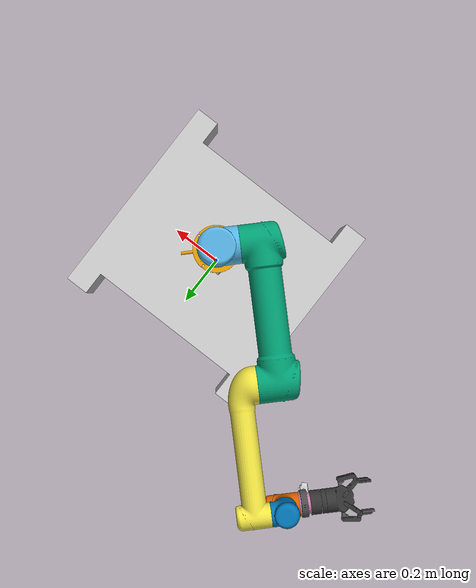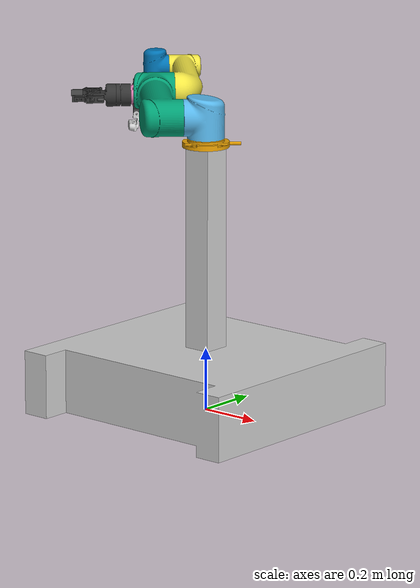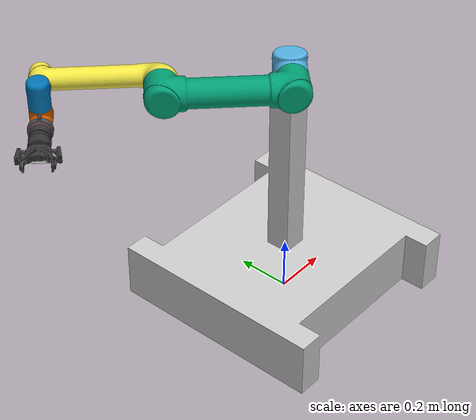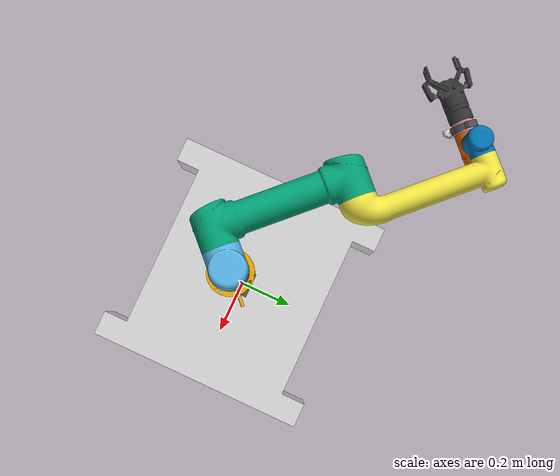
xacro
<?xml version="1.0" encoding="utf-8"?>
<robot name="oja" xmlns:xacro="http://wiki.ros.org/xacro">

    <!-- Arm -->

    <link name="arm_base_link">
        <visual>
            <geometry>
                <mesh filename="ur5/visual/base.obj"/>
            </geometry>
        </visual>
        <collision>
            <geometry>
                <mesh filename="ur5/collision/base.stl"/>
            </geometry>
        </collision>
        <inertial>
            <mass value="4.0"/>
            <origin rpy="0 0 0" xyz="0.0 0.0 0.0"/>
            <inertia ixx="0.00443333156" ixy="0.0" ixz="0.0" iyy="0.00443333156" iyz="0.0" izz="0.0072"/>
        </inertial>
    </link>
    <joint name="arm_shoulder_pan_joint" type="revolute">
        <parent link="arm_base_link"/>
        <child link="arm_shoulder_link"/>
        <origin rpy="0.0 0.0 0.0" xyz="0.0 0.0 0.089159"/>
        <axis xyz="0 0 1"/>
        <limit effort="150.0" lower="-6.28318530718" upper="6.28318530718" velocity="3.15"/>
        <dynamics damping="0.0" friction="0.0"/>
    </joint>
    <link name="arm_shoulder_link">
        <visual>
            <geometry>
                <mesh filename="ur5/visual/shoulder.obj"/>
            </geometry>
        </visual>
        <collision>
            <geometry>
                <mesh filename="ur5/collision/shoulder.stl"/>
            </geometry>
        </collision>
        <inertial>
            <mass value="3.7"/>
            <origin rpy="0 0 0" xyz="0.0 0.0 0.0"/>
            <inertia ixx="0.010267495893" ixy="0.0" ixz="0.0" iyy="0.010267495893" iyz="0.0" izz="0.00666"/>
        </inertial>
    </link>
    <joint name="arm_shoulder_lift_joint" type="revolute">
        <parent link="arm_shoulder_link"/>
        <child link="arm_upper_arm_link"/>
        <origin rpy="0.0 1.57079632679 0.0" xyz="0.0 0.13585 0.0"/>
        <axis xyz="0 1 0"/>
        <limit effort="150.0" lower="-6.28318530718" upper="6.28318530718" velocity="3.15"/>
        <dynamics damping="0.0" friction="0.0"/>
    </joint>
    <link name="arm_upper_arm_link">
        <visual>
            <geometry>
                <mesh filename="ur5/visual/upperarm.obj"/>
            </geometry>
        </visual>
        <collision>
            <geometry>
                <mesh filename="ur5/collision/upperarm.stl"/>
            </geometry>
        </collision>
        <inertial>
            <mass value="8.393"/>
            <origin rpy="0 0 0" xyz="0.0 0.0 0.28"/>
            <inertia ixx="0.22689067591" ixy="0.0" ixz="0.0" iyy="0.22689067591" iyz="0.0" izz="0.0151074"/>
        </inertial>
    </link>
    <joint name="arm_elbow_joint" type="revolute">
        <parent link="arm_upper_arm_link"/>
        <child link="arm_forearm_link"/>
        <origin rpy="0.0 0.0 0.0" xyz="0.0 -0.1197 0.425"/>
        <axis xyz="0 1 0"/>
        <limit effort="150.0" lower="-3.14159265359" upper="3.14159265359" velocity="3.15"/>
        <dynamics damping="0.0" friction="0.0"/>
    </joint>
    <link name="arm_forearm_link">
        <visual>
            <geometry>
                <mesh filename="ur5/visual/forearm.obj"/>
            </geometry>
        </visual>
        <collision>
            <geometry>
                <mesh filename="ur5/collision/forearm.stl"/>
            </geometry>
        </collision>
        <inertial>
            <mass value="2.275"/>
            <origin rpy="0 0 0" xyz="0.0 0.0 0.196125"/>
            <inertia ixx="0.0312167910289" ixy="0.0" ixz="0.0" iyy="0.0312167910289" iyz="0.0" izz="0.004095"/>
        </inertial>
    </link>
    <joint name="arm_wrist_1_joint" type="revolute">
        <parent link="arm_forearm_link"/>
        <child link="arm_wrist_1_link"/>
        <origin rpy="0.0 1.57079632679 0.0" xyz="0.0 0.0 0.39225"/>
        <axis xyz="0 1 0"/>
        <limit effort="28.0" lower="-6.28318530718" upper="6.28318530718" velocity="3.2"/>
        <dynamics damping="0.0" friction="0.0"/>
    </joint>
    <link name="arm_wrist_1_link">
        <visual>
            <geometry>
                <mesh filename="ur5/visual/wrist1.obj"/>
            </geometry>
        </visual>
        <collision>
            <geometry>
                <mesh filename="ur5/collision/wrist1.stl"/>
            </geometry>
        </collision>
        <inertial>
            <mass value="1.219"/>
            <origin rpy="0 0 0" xyz="0.0 0.093 0.0"/>
            <inertia ixx="0.00255989897604" ixy="0.0" ixz="0.0" iyy="0.00255989897604" iyz="0.0" izz="0.0021942"/>
        </inertial>
    </link>
    <joint name="arm_wrist_2_joint" type="revolute">
        <parent link="arm_wrist_1_link"/>
        <child link="arm_wrist_2_link"/>
        <origin rpy="0.0 0.0 0.0" xyz="0.0 0.093 0.0"/>
        <axis xyz="0 0 1"/>
        <limit effort="28.0" lower="-6.28318530718" upper="6.28318530718" velocity="3.2"/>
        <dynamics damping="0.0" friction="0.0"/>
    </joint>
    <link name="arm_wrist_2_link">
        <visual>
            <geometry>
                <mesh filename="ur5/visual/wrist2.obj"/>
            </geometry>
        </visual>
        <collision>
            <geometry>
                <mesh filename="ur5/collision/wrist2.stl"/>
            </geometry>
        </collision>
        <inertial>
            <mass value="1.219"/>
            <origin rpy="0 0 0" xyz="0.0 0.0 0.09465"/>
            <inertia ixx="0.00255989897604" ixy="0.0" ixz="0.0" iyy="0.00255989897604" iyz="0.0" izz="0.0021942"/>
        </inertial>
    </link>
    <joint name="arm_wrist_3_joint" type="revolute">
        <parent link="arm_wrist_2_link"/>
        <child link="arm_wrist_3_link"/>
        <origin rpy="0.0 0.0 0.0" xyz="0.0 0.0 0.09465"/>
        <axis xyz="0 1 0"/>
        <limit effort="28.0" lower="-6.28318530718" upper="6.28318530718" velocity="3.2"/>
        <dynamics damping="0.0" friction="0.0"/>
    </joint>
    <link name="arm_wrist_3_link">
        <visual>
            <geometry>
                <mesh filename="ur5/visual/wrist3.obj"/>
            </geometry>
        </visual>
        <collision>
            <geometry>
                <mesh filename="ur5/collision/wrist3.stl"/>
            </geometry>
        </collision>
        <inertial>
            <mass value="0.1879"/>
            <origin rpy="1.57079632679 0 0" xyz="0.0 0.06505 0.0"/>
            <inertia ixx="8.46958911216e-05" ixy="0.0" ixz="0.0" iyy="8.46958911216e-05" iyz="0.0"
                     izz="0.0001321171875"/>
        </inertial>
    </link>
    <joint name="arm_ft_fixed_joint" type="fixed">
        <parent link="arm_wrist_3_link"/>
        <child link="arm_ft_link"/>
        <origin rpy="1.57079632679 0.0 0" xyz="0.0 0.1194 0.0"/>
    </joint>
    <link name="arm_ft_link">
        <visual>
            <geometry>
                <mesh filename="ur5/visual/ft300.dae"/>
            </geometry>
            <material name="LightBlack"/>
        </visual>
        <collision>
            <geometry>
                <mesh filename="ur5/collision/ft300.stl"/>
            </geometry>
        </collision>
        <inertial>
            <origin xyz="0 0 ${-20 / 1000}" rpy="0 0 0"/>
            <mass value="0.350"/>
            <inertia ixx="${262 / 1000000}" ixy="0" ixz="${1 / 1000000}" iyy="${265 / 1000000}" iyx="0"
                     iyz="${1 / 1000000}" izz="${219 / 1000000}" izx="${-1 / 1000000}" izy="${1 / 1000000}"/>
        </inertial>
    </link>

    <!-- Gripper -->

    <joint name="gripper_coupling_joint" type="fixed">
        <parent link="arm_ft_link"/>
        <child link="gripper_coupling_link"/>
        <origin rpy="3.14159265359 0 1.57079632679" xyz="0 0 0"/>
    </joint>
    <link name="gripper_coupling_link">
        <visual>
            <geometry>
                <mesh filename="robotiq_2f/visual/coupling.dae"/>
            </geometry>
            <material name="LightBlack">
                <color rgba="0.2 0.2 0.2 1.0"/>
            </material>
        </visual>
        <inertial>
            <mass value="0.1"/>
            <inertia ixx="0.0" ixy="0.0" ixz="0.0" iyy="0.0" iyz="0.0" izz="0.0"/>
        </inertial>
        <collision>
            <geometry>
                <mesh filename="robotiq_2f/collision/coupling.stl"/>
            </geometry>
        </collision>
    </link>
    <joint name="gripper_base_joint" type="fixed">
        <parent link="gripper_coupling_link"/>
        <child link="gripper_base_link"/>
        <origin rpy="0 0 3.14159265359" xyz="0 0 0.008"/>
    </joint>
    <link name="gripper_base_link">
        <inertial>
            <origin rpy="0 0 0" xyz="8.625E-08 -4.6583E-06 0.03145"/>
            <mass value="0.22652"/>
            <inertia ixx="0.00020005" ixy="-4.2442E-10" ixz="-2.9069E-10" iyy="0.00017832" iyz="-3.4402E-08"
                     izz="0.00013478"/>
        </inertial>
        <visual>
            <geometry>
                <mesh filename="robotiq_2f/visual/base_link.dae"/>
            </geometry>
            <material name="LightBlack"/>
        </visual>
        <collision>
            <geometry>
                <mesh filename="robotiq_2f/collision/base_link.stl"/>
            </geometry>
        </collision>
    </link>
    <link name="gripper_left_outer_knuckle">
        <inertial>
            <origin rpy="0 0 0" xyz="-0.000200000000003065 0.0199435877845359 0.0292245259211331"/>
            <mass value="0.00853198276973456"/>
            <inertia ixx="2.89328108496468E-06" ixy="-1.57935047237397E-19" ixz="-1.93980378593255E-19"
                     iyy="1.86719750325683E-06" iyz="-1.21858577871576E-06" izz="1.21905238907251E-06"/>
        </inertial>
        <visual>
            <origin rpy="0 0 0" xyz="0 0 0"/>
            <geometry>
                <mesh filename="robotiq_2f/visual/outer_knuckle.dae"/>
            </geometry>
            <material name="DarkGrey"/>
        </visual>
        <collision>
            <origin rpy="0 0 0" xyz="0 0 0"/>
            <geometry>
                <mesh filename="robotiq_2f/collision/outer_knuckle.stl"/>
            </geometry>
        </collision>
    </link>
    <link name="gripper_left_outer_finger">
        <inertial>
            <origin rpy="0 0 0" xyz="0.00030115855001899 0.0373907951953854 -0.0208027427000385"/>
            <mass value="0.022614240507152"/>
            <inertia ixx="1.52518312458174E-05" ixy="9.76583423954399E-10" ixz="-5.43838577022588E-10"
                     iyy="6.17694243867776E-06" iyz="6.78636130740228E-06" izz="1.16494917907219E-05"/>
        </inertial>
        <visual>
            <origin rpy="0 0 0" xyz="0 0 0"/>
            <geometry>
                <mesh filename="robotiq_2f/visual/outer_finger.dae"/>
            </geometry>
            <material name="LightBlack"/>
        </visual>
        <collision>
            <geometry>
                <mesh filename="robotiq_2f/collision/outer_finger.stl"/>
            </geometry>
        </collision>
    </link>
    <link name="gripper_left_inner_finger">
        <inertial>
            <origin rpy="0 0 0" xyz="0.000299999999999317 0.0160078233491243 -0.0136945669206257"/>
            <mass value="0.0104003125914103"/>
            <inertia ixx="2.71909453810972E-06" ixy="1.35402465472579E-21" ixz="-7.1817349065269E-22"
                     iyy="7.69100314106116E-07" iyz="6.74715432769696E-07" izz="2.30315190420171E-06"/>
        </inertial>
        <visual>
            <origin rpy="0 0 0" xyz="0 0 0"/>
            <geometry>
                <mesh filename="robotiq_2f/visual/inner_finger.dae"/>
            </geometry>
            <material name="LightBlack"/>
        </visual>
        <collision>
            <geometry>
                <mesh filename="robotiq_2f/collision/inner_finger.stl"/>
            </geometry>
        </collision>
    </link>
    <link name="gripper_left_inner_finger_pad">
        <visual>
            <origin rpy="0 0 0" xyz="0 0 0"/>
            <geometry>
                <box size="0.022 0.00635 0.0375"/>
            </geometry>
            <material name="LightBlack"/>
        </visual>
        <collision>
            <origin rpy="0 0 0" xyz="0 0 0"/>
            <geometry>
                <box size="0.022 0.00635 0.0375"/>
            </geometry>
        </collision>
        <inertial>
            <mass value="0.01"/>
            <inertia ixx="0.0" ixy="0.0" ixz="0.0" iyy="0.0" iyz="0.0" izz="0.0"/>
        </inertial>
        <contact>
            <friction_anchor/>
            <stiffness value="30000.0"/>
            <damping value="1000.0"/>
            <spinning_friction value="0.1"/>
            <lateral_friction value="1.0"/>
        </contact>
    </link>
    <link name="gripper_left_inner_knuckle">
        <inertial>
            <origin rpy="0 0 0" xyz="0.000123011831763771 0.0507850843201817 0.00103968640075166"/>
            <mass value="0.0271177346495152"/>
            <inertia ixx="2.61910379223783E-05" ixy="-2.43616858946494E-07" ixz="-6.37789906117123E-09"
                     iyy="2.8270243746167E-06" iyz="-5.37200748039765E-07" izz="2.83695868220296E-05"/>
        </inertial>
        <visual>
            <origin rpy="0 0 0" xyz="0 0 0"/>
            <geometry>
                <mesh filename="robotiq_2f/visual/inner_knuckle.dae"/>
            </geometry>
            <material name="LightBlack"/>
        </visual>
        <collision>
            <origin rpy="0 0 0" xyz="0 0 0"/>
            <geometry>
                <mesh filename="robotiq_2f/collision/inner_knuckle.stl"/>
            </geometry>
        </collision>
    </link>
    <link name="gripper_right_outer_knuckle">
        <inertial>
            <origin rpy="0 0 0" xyz="-0.000200000000003065 0.0199435877845359 0.0292245259211331"/>
            <mass value="0.00853198276973456"/>
            <inertia ixx="2.89328108496468E-06" ixy="-1.57935047237397E-19" ixz="-1.93980378593255E-19"
                     iyy="1.86719750325683E-06" iyz="-1.21858577871576E-06" izz="1.21905238907251E-06"/>
        </inertial>
        <visual>
            <origin rpy="0 0 0" xyz="0 0 0"/>
            <geometry>
                <mesh filename="robotiq_2f/visual/outer_knuckle.dae"/>
            </geometry>
            <material name="DarkGrey"/>
        </visual>
        <collision>
            <origin rpy="0 0 0" xyz="0 0 0"/>
            <geometry>
                <mesh filename="robotiq_2f/collision/outer_knuckle.stl"/>
            </geometry>
        </collision>
    </link>
    <link name="gripper_right_outer_finger">
        <inertial>
            <origin rpy="0 0 0" xyz="0.00030115855001899 0.0373907951953854 -0.0208027427000385"/>
            <mass value="0.022614240507152"/>
            <inertia ixx="1.52518312458174E-05" ixy="9.76583423954399E-10" ixz="-5.43838577022588E-10"
                     iyy="6.17694243867776E-06" iyz="6.78636130740228E-06" izz="1.16494917907219E-05"/>
        </inertial>
        <visual>
            <origin rpy="0 0 0" xyz="0 0 0"/>
            <geometry>
                <mesh filename="robotiq_2f/visual/outer_finger.dae"/>
            </geometry>
            <material name="LightBlack"/>
        </visual>
        <collision>
            <origin rpy="0 0 0" xyz="0 0 0"/>
            <geometry>
                <mesh filename="robotiq_2f/collision/outer_finger.stl"/>
            </geometry>
        </collision>
    </link>
    <link name="gripper_right_inner_finger">
        <inertial>
            <origin rpy="0 0 0" xyz="0.000299999999999317 0.0160078233491243 -0.0136945669206257"/>
            <mass value="0.0104003125914103"/>
            <inertia ixx="2.71909453810972E-06" ixy="1.35402465472579E-21" ixz="-7.1817349065269E-22"
                     iyy="7.69100314106116E-07" iyz="6.74715432769696E-07" izz="2.30315190420171E-06"/>
        </inertial>
        <visual>
            <origin rpy="0 0 0" xyz="0 0 0"/>
            <geometry>
                <mesh filename="robotiq_2f/visual/inner_finger.dae"/>
            </geometry>
            <material name="LightBlack"/>
        </visual>
        <collision>
            <origin rpy="0 0 0" xyz="0 0 0"/>
            <geometry>
                <mesh filename="robotiq_2f/collision/inner_finger.stl"/>
            </geometry>
        </collision>
    </link>
    <link name="gripper_right_inner_finger_pad">
        <visual>
            <origin rpy="0 0 0" xyz="0 0 0"/>
            <geometry>
                <box size="0.022 0.00635 0.0375"/>
            </geometry>
            <material name="DarkGrey"/>
        </visual>
        <collision>
            <origin rpy="0 0 0" xyz="0 0 0"/>
            <geometry>
                <box size="0.022 0.00635 0.0375"/>
            </geometry>
        </collision>
        <inertial>
            <mass value="0.01"/>
            <inertia ixx="0.0" ixy="0.0" ixz="0.0" iyy="0.0" iyz="0.0" izz="0.0"/>
        </inertial>
        <contact>
            <friction_anchor/>
            <stiffness value="30000.0"/>
            <damping value="1000.0"/>
            <spinning_friction value="0.1"/>
            <lateral_friction value="1.0"/>
        </contact>
    </link>
    <link name="gripper_right_inner_knuckle">
        <inertial>
            <origin rpy="0 0 0" xyz="0.000123011831763771 0.0507850843201817 0.00103968640075166"/>
            <mass value="0.0271177346495152"/>
            <inertia ixx="2.61910379223783E-05" ixy="-2.43616858946494E-07" ixz="-6.37789906117123E-09"
                     iyy="2.8270243746167E-06" iyz="-5.37200748039765E-07" izz="2.83695868220296E-05"/>
        </inertial>
        <visual>
            <origin rpy="0 0 0" xyz="0 0 0"/>
            <geometry>
                <mesh filename="robotiq_2f/visual/inner_knuckle.dae"/>
            </geometry>
            <material name="LightBlack"/>
        </visual>
        <collision>
            <origin rpy="0 0 0" xyz="0 0 0"/>
            <geometry>
                <mesh filename="robotiq_2f/collision/inner_knuckle.stl"/>
            </geometry>
        </collision>
    </link>
    <joint name="gripper_finger_joint" type="revolute">
        <origin rpy="0 0 3.14159265359" xyz="0 -0.0306011 0.054904"/>
        <parent link="gripper_base_link"/>
        <child link="gripper_left_outer_knuckle"/>
        <axis xyz="1 0 0"/>
        <limit effort="1000" lower="0" upper="0.8" velocity="2.0"/>
    </joint>
    <joint name="gripper_left_outer_finger_joint" type="fixed">
        <origin rpy="0 0 0" xyz="0 0.0315 -0.0041"/>
        <parent link="gripper_left_outer_knuckle"/>
        <child link="gripper_left_outer_finger"/>
        <axis xyz="1 0 0"/>
    </joint>
    <joint name="gripper_left_inner_knuckle_joint" type="revolute">
        <origin rpy="0 0 3.14159265359" xyz="0 -0.0127 0.06142"/>
        <parent link="gripper_base_link"/>
        <child link="gripper_left_inner_knuckle"/>
        <axis xyz="1 0 0"/>
        <limit effort="1000" lower="0" upper="0.8757" velocity="2.0"/>
        <mimic joint="finger_joint" multiplier="1" offset="0"/>
    </joint>
    <joint name="gripper_left_inner_finger_joint" type="revolute">
        <origin rpy="0 0 0" xyz="0 0.0061 0.0471"/>
        <parent link="gripper_left_outer_finger"/>
        <child link="gripper_left_inner_finger"/>
        <axis xyz="1 0 0"/>
        <limit effort="1000" lower="0" upper="-0.8757" velocity="2.0"/>
        <mimic joint="finger_joint" multiplier="-1" offset="0"/>
    </joint>
    <joint name="gripper_left_inner_finger_pad_joint" type="fixed">
        <origin rpy="0 0 0" xyz="0 -0.0220203446692936 0.03242"/>
        <parent link="gripper_left_inner_finger"/>
        <child link="gripper_left_inner_finger_pad"/>
        <axis xyz="0 0 1"/>
    </joint>
    <joint name="gripper_right_outer_knuckle_joint" type="revolute">
        <origin rpy="0 0 0" xyz="0 0.0306011 0.054904"/>
        <parent link="gripper_base_link"/>
        <child link="gripper_right_outer_knuckle"/>
        <axis xyz="1 0 0"/>
        <limit effort="1000" lower="0" upper="0.81" velocity="2.0"/>
        <mimic joint="finger_joint" multiplier="1" offset="0"/>
    </joint>
    <joint name="gripper_right_outer_finger_joint" type="fixed">
        <origin rpy="0 0 0" xyz="0 0.0315 -0.0041"/>
        <parent link="gripper_right_outer_knuckle"/>
        <child link="gripper_right_outer_finger"/>
        <axis xyz="1 0 0"/>
    </joint>
    <joint name="gripper_right_inner_knuckle_joint" type="revolute">
        <origin rpy="0 0 0.0" xyz="0 0.0127 0.06142"/>
        <parent link="gripper_base_link"/>
        <child link="gripper_right_inner_knuckle"/>
        <axis xyz="1 0 0"/>
        <limit effort="1000" lower="0" upper="0.8757" velocity="2.0"/>
        <mimic joint="finger_joint" multiplier="1" offset="0"/>
    </joint>
    <joint name="gripper_right_inner_finger_joint" type="revolute">
        <origin rpy="0 0 0" xyz="0 0.0061 0.0471"/>
        <parent link="gripper_right_outer_finger"/>
        <child link="gripper_right_inner_finger"/>
        <axis xyz="1 0 0"/>
        <limit effort="1000" lower="0" upper="-0.8757" velocity="2.0"/>
        <mimic joint="finger_joint" multiplier="-1" offset="0"/>
    </joint>
    <joint name="gripper_right_inner_finger_pad_joint" type="fixed">
        <origin rpy="0 0 0" xyz="0 -0.0220203446692936 0.03242"/>
        <parent link="gripper_right_inner_finger"/>
        <child link="gripper_right_inner_finger_pad"/>
        <axis xyz="0 0 1"/>
    </joint>
    <joint name="tcp_fixed_joint" type="fixed">
        <parent link="arm_ft_link"/>
        <child link="tcp_link"/>
        <origin rpy="-1.57079632679 1.57079632679 0" xyz="0.0 0.0 -0.17"/>
    </joint>
    <link name="tcp_link">
        <inertial>
            <mass value="0"/>
            <inertia ixx="0.0" ixy="0.0" ixz="0.0" iyy="0.0" iyz="0.0" izz="0.0"/>
        </inertial>
    </link>

    <!-- camera -->

    <joint name="camera_mount_joint" type="fixed">
        <parent link="arm_wrist_3_link"/>
        <child link="camera_mount_link"/>
        <origin xyz="0 0.0623 0" rpy="0 0 1.57079632679"/>
    </joint>
    <link name="camera_mount_link">
        <visual>
            <geometry>
                <mesh filename="ur5/visual/camera_mount.dae"/>
            </geometry>
            <material name="DarkGrey"/>
        </visual>
        <collision>
            <geometry>
                <mesh filename="ur5/collision/camera_mount.stl"/>
            </geometry>
        </collision>
        <inertial>
            <mass value="0.1"/>
            <inertia
                    ixx="0.0" ixy="0.0" ixz="0.0" iyy="0.0" iyz="0.0" izz="0.0"/>
        </inertial>
    </link>
    <joint name="camera_hw_joint" type="fixed">
        <parent link="camera_mount_link"/>
        <child link="camera_hw_link"/>
        <origin xyz="0.0102 0.0175 0.1033" rpy="0 0.13 0"/>
    </joint>
    <link name="camera_hw_link">
        <visual>
            <geometry>
                <mesh filename="ur5/visual/realsense.dae"/>
            </geometry>
            <material name="LightGrey"/>
        </visual>
        <collision>
            <geometry>
                <mesh filename="ur5/collision/realsense.stl"/>
            </geometry>
        </collision>
        <inertial>
            <mass value="0.5"/>
            <inertia
                    ixx="0.0" ixy="0.0" ixz="0.0" iyy="0.0" iyz="0.0" izz="0.0"/>
        </inertial>
    </link>
    <joint name="camera_optical_joint" type="fixed">
        <parent link="camera_hw_link"/>
        <child link="camera_link"/>
        <origin xyz="0 0 0" rpy="0 0 0"/>
    </joint>
    <link name="camera_link">
        <inertial>
            <mass value="0"/>
            <inertia ixx="0.0" ixy="0.0" ixz="0.0" iyy="0.0" iyz="0.0" izz="0.0"/>
        </inertial>
    </link>

    <!-- Stand -->

    <link name="stand_link">
        <visual>
            <geometry>
                <mesh filename="ur5/visual/ur_stand.dae"/>
            </geometry>
            <material name="LightGrey"/>
        </visual>
        <collision>
            <geometry>
                <mesh filename="ur5/collision/ur_stand.stl"/>
            </geometry>
        </collision>
        <inertial>
            <mass value="50"/>
            <origin rpy="0 0 0" xyz="0.000000 0.000000 0.121503"/>
            <inertia ixx="0.005761" ixy="0.0" ixz="0.0" iyy="0.007830" iyz="0.0" izz="0.010644"/>
        </inertial>
    </link>
    <joint name="stand_joint" type="fixed">
        <parent link="stand_link"/>
        <child link="arm_base_link"/>
        <origin rpy="0.0 0.0 2.3562" xyz="0.0 0.0 0.853"/>
    </joint>
</robot>
